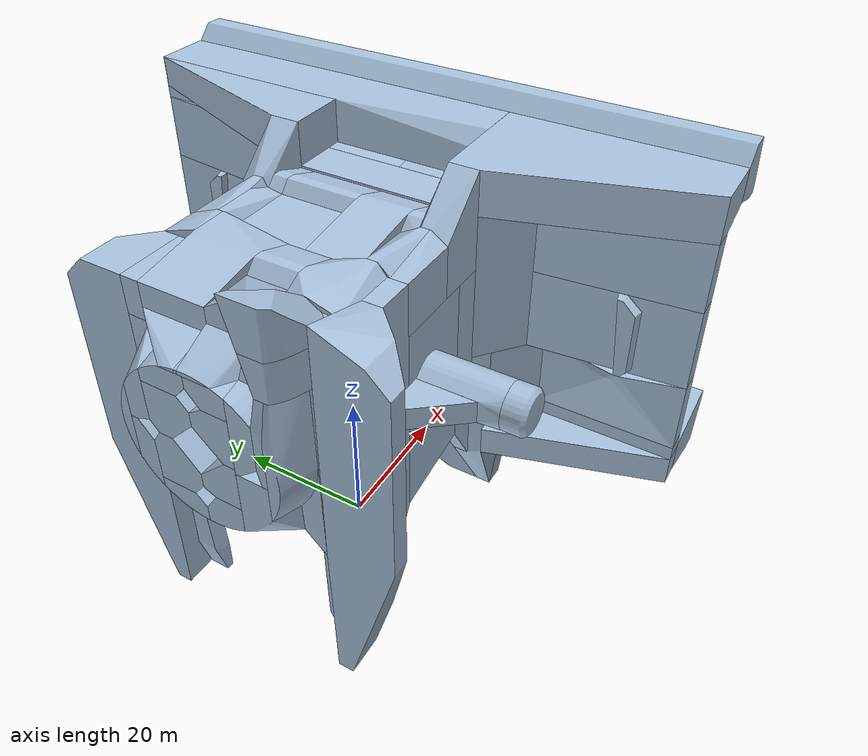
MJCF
<?xml version="1.0" encoding="UTF-8"?>
<mujoco model="gripper_base">
  <compiler angle="radian" meshdir="."/>
  <option gravity="0 0 -9.81"/>
  <asset>
    <mesh name="gripper_base_part_000" file="Gripper Base_parts/Gripper Base_000.obj" inertia="convex"/>
    <mesh name="gripper_base_part_001" file="Gripper Base_parts/Gripper Base_001.obj" inertia="convex"/>
    <mesh name="gripper_base_part_002" file="Gripper Base_parts/Gripper Base_002.obj" inertia="convex"/>
    <mesh name="gripper_base_part_003" file="Gripper Base_parts/Gripper Base_003.obj" inertia="convex"/>
    <mesh name="gripper_base_part_004" file="Gripper Base_parts/Gripper Base_004.obj" inertia="convex"/>
    <mesh name="gripper_base_part_005" file="Gripper Base_parts/Gripper Base_005.obj" inertia="convex"/>
    <mesh name="gripper_base_part_006" file="Gripper Base_parts/Gripper Base_006.obj" inertia="convex"/>
    <mesh name="gripper_base_part_007" file="Gripper Base_parts/Gripper Base_007.obj" inertia="convex"/>
    <mesh name="gripper_base_part_008" file="Gripper Base_parts/Gripper Base_008.obj" inertia="convex"/>
    <mesh name="gripper_base_part_009" file="Gripper Base_parts/Gripper Base_009.obj" inertia="convex"/>
    <mesh name="gripper_base_part_010" file="Gripper Base_parts/Gripper Base_010.obj" inertia="convex"/>
    <mesh name="gripper_base_part_011" file="Gripper Base_parts/Gripper Base_011.obj" inertia="convex"/>
    <mesh name="gripper_base_part_012" file="Gripper Base_parts/Gripper Base_012.obj" inertia="convex"/>
    <mesh name="gripper_base_part_013" file="Gripper Base_parts/Gripper Base_013.obj" inertia="convex"/>
    <mesh name="gripper_base_part_014" file="Gripper Base_parts/Gripper Base_014.obj" inertia="convex"/>
    <mesh name="gripper_base_part_015" file="Gripper Base_parts/Gripper Base_015.obj" inertia="convex"/>
    <mesh name="gripper_base_part_016" file="Gripper Base_parts/Gripper Base_016.obj" inertia="convex"/>
    <mesh name="gripper_base_part_017" file="Gripper Base_parts/Gripper Base_017.obj" inertia="convex"/>
    <mesh name="gripper_base_part_018" file="Gripper Base_parts/Gripper Base_018.obj" inertia="convex"/>
    <mesh name="gripper_base_part_019" file="Gripper Base_parts/Gripper Base_019.obj" inertia="convex"/>
    <mesh name="gripper_base_part_020" file="Gripper Base_parts/Gripper Base_020.obj" inertia="convex"/>
    <mesh name="gripper_base_part_021" file="Gripper Base_parts/Gripper Base_021.obj" inertia="convex"/>
    <mesh name="gripper_base_part_022" file="Gripper Base_parts/Gripper Base_022.obj" inertia="convex"/>
    <mesh name="gripper_base_part_023" file="Gripper Base_parts/Gripper Base_023.obj" inertia="convex"/>
    <mesh name="gripper_base_part_024" file="Gripper Base_parts/Gripper Base_024.obj" inertia="convex"/>
    <mesh name="gripper_base_part_025" file="Gripper Base_parts/Gripper Base_025.obj" inertia="convex"/>
    <mesh name="gripper_base_part_026" file="Gripper Base_parts/Gripper Base_026.obj" inertia="convex"/>
    <mesh name="gripper_base_part_027" file="Gripper Base_parts/Gripper Base_027.obj" inertia="convex"/>
    <mesh name="gripper_base_part_028" file="Gripper Base_parts/Gripper Base_028.obj" inertia="convex"/>
    <mesh name="gripper_base_part_029" file="Gripper Base_parts/Gripper Base_029.obj" inertia="convex"/>
    <mesh name="gripper_base_part_030" file="Gripper Base_parts/Gripper Base_030.obj" inertia="convex"/>
    <mesh name="gripper_base_part_031" file="Gripper Base_parts/Gripper Base_031.obj" inertia="convex"/>
    <mesh name="gripper_base_part_032" file="Gripper Base_parts/Gripper Base_032.obj" inertia="convex"/>
    <mesh name="gripper_base_part_033" file="Gripper Base_parts/Gripper Base_033.obj" inertia="convex"/>
    <mesh name="gripper_base_part_034" file="Gripper Base_parts/Gripper Base_034.obj" inertia="convex"/>
    <mesh name="gripper_base_part_035" file="Gripper Base_parts/Gripper Base_035.obj" inertia="convex"/>
    <mesh name="gripper_base_part_036" file="Gripper Base_parts/Gripper Base_036.obj" inertia="convex"/>
    <mesh name="gripper_base_part_037" file="Gripper Base_parts/Gripper Base_037.obj" inertia="convex"/>
    <mesh name="gripper_base_part_038" file="Gripper Base_parts/Gripper Base_038.obj" inertia="convex"/>
    <mesh name="gripper_base_part_039" file="Gripper Base_parts/Gripper Base_039.obj" inertia="convex"/>
    <mesh name="gripper_base_part_040" file="Gripper Base_parts/Gripper Base_040.obj" inertia="convex"/>
    <mesh name="gripper_base_part_041" file="Gripper Base_parts/Gripper Base_041.obj" inertia="convex"/>
    <mesh name="gripper_base_part_042" file="Gripper Base_parts/Gripper Base_042.obj" inertia="convex"/>
    <mesh name="gripper_base_part_043" file="Gripper Base_parts/Gripper Base_043.obj" inertia="convex"/>
    <mesh name="gripper_base_part_044" file="Gripper Base_parts/Gripper Base_044.obj" inertia="convex"/>
    <mesh name="gripper_base_part_045" file="Gripper Base_parts/Gripper Base_045.obj" inertia="convex"/>
    <mesh name="gripper_base_part_046" file="Gripper Base_parts/Gripper Base_046.obj" inertia="convex"/>
    <mesh name="gripper_base_part_047" file="Gripper Base_parts/Gripper Base_047.obj" inertia="convex"/>
    <mesh name="gripper_base_part_048" file="Gripper Base_parts/Gripper Base_048.obj" inertia="convex"/>
    <mesh name="gripper_base_part_049" file="Gripper Base_parts/Gripper Base_049.obj" inertia="convex"/>
    <mesh name="gripper_base_part_050" file="Gripper Base_parts/Gripper Base_050.obj" inertia="convex"/>
    <mesh name="gripper_base_part_051" file="Gripper Base_parts/Gripper Base_051.obj" inertia="convex"/>
    <mesh name="gripper_base_part_052" file="Gripper Base_parts/Gripper Base_052.obj" inertia="convex"/>
    <mesh name="gripper_base_part_053" file="Gripper Base_parts/Gripper Base_053.obj" inertia="convex"/>
    <mesh name="gripper_base_part_054" file="Gripper Base_parts/Gripper Base_054.obj" inertia="convex"/>
    <mesh name="gripper_base_part_055" file="Gripper Base_parts/Gripper Base_055.obj" inertia="convex"/>
    <mesh name="gripper_base_part_056" file="Gripper Base_parts/Gripper Base_056.obj" inertia="convex"/>
    <mesh name="gripper_base_part_057" file="Gripper Base_parts/Gripper Base_057.obj" inertia="convex"/>
    <mesh name="gripper_base_part_058" file="Gripper Base_parts/Gripper Base_058.obj" inertia="convex"/>
    <mesh name="gripper_base_part_059" file="Gripper Base_parts/Gripper Base_059.obj" inertia="convex"/>
    <mesh name="gripper_base_part_060" file="Gripper Base_parts/Gripper Base_060.obj" inertia="convex"/>
    <mesh name="gripper_base_part_061" file="Gripper Base_parts/Gripper Base_061.obj" inertia="convex"/>
    <mesh name="gripper_base_part_062" file="Gripper Base_parts/Gripper Base_062.obj" inertia="convex"/>
    <mesh name="gripper_base_part_063" file="Gripper Base_parts/Gripper Base_063.obj" inertia="convex"/>
    <mesh name="gripper_base_part_064" file="Gripper Base_parts/Gripper Base_064.obj" inertia="convex"/>
    <mesh name="gripper_base_part_065" file="Gripper Base_parts/Gripper Base_065.obj" inertia="convex"/>
    <mesh name="gripper_base_part_066" file="Gripper Base_parts/Gripper Base_066.obj" inertia="convex"/>
    <mesh name="gripper_base_part_067" file="Gripper Base_parts/Gripper Base_067.obj" inertia="convex"/>
    <mesh name="gripper_base_part_068" file="Gripper Base_parts/Gripper Base_068.obj" inertia="convex"/>
    <mesh name="gripper_base_part_069" file="Gripper Base_parts/Gripper Base_069.obj" inertia="convex"/>
    <mesh name="gripper_base_part_070" file="Gripper Base_parts/Gripper Base_070.obj" inertia="convex"/>
    <mesh name="gripper_base_part_071" file="Gripper Base_parts/Gripper Base_071.obj" inertia="convex"/>
    <mesh name="gripper_base_part_072" file="Gripper Base_parts/Gripper Base_072.obj" inertia="convex"/>
    <mesh name="gripper_base_part_073" file="Gripper Base_parts/Gripper Base_073.obj" inertia="convex"/>
    <mesh name="gripper_base_part_074" file="Gripper Base_parts/Gripper Base_074.obj" inertia="convex"/>
    <mesh name="gripper_base_part_075" file="Gripper Base_parts/Gripper Base_075.obj" inertia="convex"/>
    <mesh name="gripper_base_part_076" file="Gripper Base_parts/Gripper Base_076.obj" inertia="convex"/>
    <mesh name="gripper_base_part_077" file="Gripper Base_parts/Gripper Base_077.obj" inertia="convex"/>
    <mesh name="gripper_base_part_078" file="Gripper Base_parts/Gripper Base_078.obj" inertia="convex"/>
    <mesh name="gripper_base_part_079" file="Gripper Base_parts/Gripper Base_079.obj" inertia="convex"/>
    <mesh name="gripper_base_part_080" file="Gripper Base_parts/Gripper Base_080.obj" inertia="convex"/>
    <mesh name="gripper_base_part_081" file="Gripper Base_parts/Gripper Base_081.obj" inertia="convex"/>
    <mesh name="gripper_base_part_082" file="Gripper Base_parts/Gripper Base_082.obj" inertia="convex"/>
    <mesh name="gripper_base_part_083" file="Gripper Base_parts/Gripper Base_083.obj" inertia="convex"/>
    <mesh name="gripper_base_part_084" file="Gripper Base_parts/Gripper Base_084.obj" inertia="convex"/>
    <mesh name="gripper_base_part_085" file="Gripper Base_parts/Gripper Base_085.obj" inertia="convex"/>
    <mesh name="gripper_base_part_086" file="Gripper Base_parts/Gripper Base_086.obj" inertia="convex"/>
    <mesh name="gripper_base_part_087" file="Gripper Base_parts/Gripper Base_087.obj" inertia="convex"/>
  </asset>
  <worldbody>
    <body name="gripper_base">
      <!-- Remove this freejoint when attaching the body to an existing model. -->
      <freejoint/>
      <geom name="gripper_base_part_000_geom" type="mesh" mesh="gripper_base_part_000" contype="1" conaffinity="1" rgba="0.65 0.75 0.85 1"/>
      <geom name="gripper_base_part_001_geom" type="mesh" mesh="gripper_base_part_001" contype="1" conaffinity="1" rgba="0.65 0.75 0.85 1"/>
      <geom name="gripper_base_part_002_geom" type="mesh" mesh="gripper_base_part_002" contype="1" conaffinity="1" rgba="0.65 0.75 0.85 1"/>
      <geom name="gripper_base_part_003_geom" type="mesh" mesh="gripper_base_part_003" contype="1" conaffinity="1" rgba="0.65 0.75 0.85 1"/>
      <geom name="gripper_base_part_004_geom" type="mesh" mesh="gripper_base_part_004" contype="1" conaffinity="1" rgba="0.65 0.75 0.85 1"/>
      <geom name="gripper_base_part_005_geom" type="mesh" mesh="gripper_base_part_005" contype="1" conaffinity="1" rgba="0.65 0.75 0.85 1"/>
      <geom name="gripper_base_part_006_geom" type="mesh" mesh="gripper_base_part_006" contype="1" conaffinity="1" rgba="0.65 0.75 0.85 1"/>
      <geom name="gripper_base_part_007_geom" type="mesh" mesh="gripper_base_part_007" contype="1" conaffinity="1" rgba="0.65 0.75 0.85 1"/>
      <geom name="gripper_base_part_008_geom" type="mesh" mesh="gripper_base_part_008" contype="1" conaffinity="1" rgba="0.65 0.75 0.85 1"/>
      <geom name="gripper_base_part_009_geom" type="mesh" mesh="gripper_base_part_009" contype="1" conaffinity="1" rgba="0.65 0.75 0.85 1"/>
      <geom name="gripper_base_part_010_geom" type="mesh" mesh="gripper_base_part_010" contype="1" conaffinity="1" rgba="0.65 0.75 0.85 1"/>
      <geom name="gripper_base_part_011_geom" type="mesh" mesh="gripper_base_part_011" contype="1" conaffinity="1" rgba="0.65 0.75 0.85 1"/>
      <geom name="gripper_base_part_012_geom" type="mesh" mesh="gripper_base_part_012" contype="1" conaffinity="1" rgba="0.65 0.75 0.85 1"/>
      <geom name="gripper_base_part_013_geom" type="mesh" mesh="gripper_base_part_013" contype="1" conaffinity="1" rgba="0.65 0.75 0.85 1"/>
      <geom name="gripper_base_part_014_geom" type="mesh" mesh="gripper_base_part_014" contype="1" conaffinity="1" rgba="0.65 0.75 0.85 1"/>
      <geom name="gripper_base_part_015_geom" type="mesh" mesh="gripper_base_part_015" contype="1" conaffinity="1" rgba="0.65 0.75 0.85 1"/>
      <geom name="gripper_base_part_016_geom" type="mesh" mesh="gripper_base_part_016" contype="1" conaffinity="1" rgba="0.65 0.75 0.85 1"/>
      <geom name="gripper_base_part_017_geom" type="mesh" mesh="gripper_base_part_017" contype="1" conaffinity="1" rgba="0.65 0.75 0.85 1"/>
      <geom name="gripper_base_part_018_geom" type="mesh" mesh="gripper_base_part_018" contype="1" conaffinity="1" rgba="0.65 0.75 0.85 1"/>
      <geom name="gripper_base_part_019_geom" type="mesh" mesh="gripper_base_part_019" contype="1" conaffinity="1" rgba="0.65 0.75 0.85 1"/>
      <geom name="gripper_base_part_020_geom" type="mesh" mesh="gripper_base_part_020" contype="1" conaffinity="1" rgba="0.65 0.75 0.85 1"/>
      <geom name="gripper_base_part_021_geom" type="mesh" mesh="gripper_base_part_021" contype="1" conaffinity="1" rgba="0.65 0.75 0.85 1"/>
      <geom name="gripper_base_part_022_geom" type="mesh" mesh="gripper_base_part_022" contype="1" conaffinity="1" rgba="0.65 0.75 0.85 1"/>
      <geom name="gripper_base_part_023_geom" type="mesh" mesh="gripper_base_part_023" contype="1" conaffinity="1" rgba="0.65 0.75 0.85 1"/>
      <geom name="gripper_base_part_024_geom" type="mesh" mesh="gripper_base_part_024" contype="1" conaffinity="1" rgba="0.65 0.75 0.85 1"/>
      <geom name="gripper_base_part_025_geom" type="mesh" mesh="gripper_base_part_025" contype="1" conaffinity="1" rgba="0.65 0.75 0.85 1"/>
      <geom name="gripper_base_part_026_geom" type="mesh" mesh="gripper_base_part_026" contype="1" conaffinity="1" rgba="0.65 0.75 0.85 1"/>
      <geom name="gripper_base_part_027_geom" type="mesh" mesh="gripper_base_part_027" contype="1" conaffinity="1" rgba="0.65 0.75 0.85 1"/>
      <geom name="gripper_base_part_028_geom" type="mesh" mesh="gripper_base_part_028" contype="1" conaffinity="1" rgba="0.65 0.75 0.85 1"/>
      <geom name="gripper_base_part_029_geom" type="mesh" mesh="gripper_base_part_029" contype="1" conaffinity="1" rgba="0.65 0.75 0.85 1"/>
      <geom name="gripper_base_part_030_geom" type="mesh" mesh="gripper_base_part_030" contype="1" conaffinity="1" rgba="0.65 0.75 0.85 1"/>
      <geom name="gripper_base_part_031_geom" type="mesh" mesh="gripper_base_part_031" contype="1" conaffinity="1" rgba="0.65 0.75 0.85 1"/>
      <geom name="gripper_base_part_032_geom" type="mesh" mesh="gripper_base_part_032" contype="1" conaffinity="1" rgba="0.65 0.75 0.85 1"/>
      <geom name="gripper_base_part_033_geom" type="mesh" mesh="gripper_base_part_033" contype="1" conaffinity="1" rgba="0.65 0.75 0.85 1"/>
      <geom name="gripper_base_part_034_geom" type="mesh" mesh="gripper_base_part_034" contype="1" conaffinity="1" rgba="0.65 0.75 0.85 1"/>
      <geom name="gripper_base_part_035_geom" type="mesh" mesh="gripper_base_part_035" contype="1" conaffinity="1" rgba="0.65 0.75 0.85 1"/>
      <geom name="gripper_base_part_036_geom" type="mesh" mesh="gripper_base_part_036" contype="1" conaffinity="1" rgba="0.65 0.75 0.85 1"/>
      <geom name="gripper_base_part_037_geom" type="mesh" mesh="gripper_base_part_037" contype="1" conaffinity="1" rgba="0.65 0.75 0.85 1"/>
      <geom name="gripper_base_part_038_geom" type="mesh" mesh="gripper_base_part_038" contype="1" conaffinity="1" rgba="0.65 0.75 0.85 1"/>
      <geom name="gripper_base_part_039_geom" type="mesh" mesh="gripper_base_part_039" contype="1" conaffinity="1" rgba="0.65 0.75 0.85 1"/>
      <geom name="gripper_base_part_040_geom" type="mesh" mesh="gripper_base_part_040" contype="1" conaffinity="1" rgba="0.65 0.75 0.85 1"/>
      <geom name="gripper_base_part_041_geom" type="mesh" mesh="gripper_base_part_041" contype="1" conaffinity="1" rgba="0.65 0.75 0.85 1"/>
      <geom name="gripper_base_part_042_geom" type="mesh" mesh="gripper_base_part_042" contype="1" conaffinity="1" rgba="0.65 0.75 0.85 1"/>
      <geom name="gripper_base_part_043_geom" type="mesh" mesh="gripper_base_part_043" contype="1" conaffinity="1" rgba="0.65 0.75 0.85 1"/>
      <geom name="gripper_base_part_044_geom" type="mesh" mesh="gripper_base_part_044" contype="1" conaffinity="1" rgba="0.65 0.75 0.85 1"/>
      <geom name="gripper_base_part_045_geom" type="mesh" mesh="gripper_base_part_045" contype="1" conaffinity="1" rgba="0.65 0.75 0.85 1"/>
      <geom name="gripper_base_part_046_geom" type="mesh" mesh="gripper_base_part_046" contype="1" conaffinity="1" rgba="0.65 0.75 0.85 1"/>
      <geom name="gripper_base_part_047_geom" type="mesh" mesh="gripper_base_part_047" contype="1" conaffinity="1" rgba="0.65 0.75 0.85 1"/>
      <geom name="gripper_base_part_048_geom" type="mesh" mesh="gripper_base_part_048" contype="1" conaffinity="1" rgba="0.65 0.75 0.85 1"/>
      <geom name="gripper_base_part_049_geom" type="mesh" mesh="gripper_base_part_049" contype="1" conaffinity="1" rgba="0.65 0.75 0.85 1"/>
      <geom name="gripper_base_part_050_geom" type="mesh" mesh="gripper_base_part_050" contype="1" conaffinity="1" rgba="0.65 0.75 0.85 1"/>
      <geom name="gripper_base_part_051_geom" type="mesh" mesh="gripper_base_part_051" contype="1" conaffinity="1" rgba="0.65 0.75 0.85 1"/>
      <geom name="gripper_base_part_052_geom" type="mesh" mesh="gripper_base_part_052" contype="1" conaffinity="1" rgba="0.65 0.75 0.85 1"/>
      <geom name="gripper_base_part_053_geom" type="mesh" mesh="gripper_base_part_053" contype="1" conaffinity="1" rgba="0.65 0.75 0.85 1"/>
      <geom name="gripper_base_part_054_geom" type="mesh" mesh="gripper_base_part_054" contype="1" conaffinity="1" rgba="0.65 0.75 0.85 1"/>
      <geom name="gripper_base_part_055_geom" type="mesh" mesh="gripper_base_part_055" contype="1" conaffinity="1" rgba="0.65 0.75 0.85 1"/>
      <geom name="gripper_base_part_056_geom" type="mesh" mesh="gripper_base_part_056" contype="1" conaffinity="1" rgba="0.65 0.75 0.85 1"/>
      <geom name="gripper_base_part_057_geom" type="mesh" mesh="gripper_base_part_057" contype="1" conaffinity="1" rgba="0.65 0.75 0.85 1"/>
      <geom name="gripper_base_part_058_geom" type="mesh" mesh="gripper_base_part_058" contype="1" conaffinity="1" rgba="0.65 0.75 0.85 1"/>
      <geom name="gripper_base_part_059_geom" type="mesh" mesh="gripper_base_part_059" contype="1" conaffinity="1" rgba="0.65 0.75 0.85 1"/>
      <geom name="gripper_base_part_060_geom" type="mesh" mesh="gripper_base_part_060" contype="1" conaffinity="1" rgba="0.65 0.75 0.85 1"/>
      <geom name="gripper_base_part_061_geom" type="mesh" mesh="gripper_base_part_061" contype="1" conaffinity="1" rgba="0.65 0.75 0.85 1"/>
      <geom name="gripper_base_part_062_geom" type="mesh" mesh="gripper_base_part_062" contype="1" conaffinity="1" rgba="0.65 0.75 0.85 1"/>
      <geom name="gripper_base_part_063_geom" type="mesh" mesh="gripper_base_part_063" contype="1" conaffinity="1" rgba="0.65 0.75 0.85 1"/>
      <geom name="gripper_base_part_064_geom" type="mesh" mesh="gripper_base_part_064" contype="1" conaffinity="1" rgba="0.65 0.75 0.85 1"/>
      <geom name="gripper_base_part_065_geom" type="mesh" mesh="gripper_base_part_065" contype="1" conaffinity="1" rgba="0.65 0.75 0.85 1"/>
      <geom name="gripper_base_part_066_geom" type="mesh" mesh="gripper_base_part_066" contype="1" conaffinity="1" rgba="0.65 0.75 0.85 1"/>
      <geom name="gripper_base_part_067_geom" type="mesh" mesh="gripper_base_part_067" contype="1" conaffinity="1" rgba="0.65 0.75 0.85 1"/>
      <geom name="gripper_base_part_068_geom" type="mesh" mesh="gripper_base_part_068" contype="1" conaffinity="1" rgba="0.65 0.75 0.85 1"/>
      <geom name="gripper_base_part_069_geom" type="mesh" mesh="gripper_base_part_069" contype="1" conaffinity="1" rgba="0.65 0.75 0.85 1"/>
      <geom name="gripper_base_part_070_geom" type="mesh" mesh="gripper_base_part_070" contype="1" conaffinity="1" rgba="0.65 0.75 0.85 1"/>
      <geom name="gripper_base_part_071_geom" type="mesh" mesh="gripper_base_part_071" contype="1" conaffinity="1" rgba="0.65 0.75 0.85 1"/>
      <geom name="gripper_base_part_072_geom" type="mesh" mesh="gripper_base_part_072" contype="1" conaffinity="1" rgba="0.65 0.75 0.85 1"/>
      <geom name="gripper_base_part_073_geom" type="mesh" mesh="gripper_base_part_073" contype="1" conaffinity="1" rgba="0.65 0.75 0.85 1"/>
      <geom name="gripper_base_part_074_geom" type="mesh" mesh="gripper_base_part_074" contype="1" conaffinity="1" rgba="0.65 0.75 0.85 1"/>
      <geom name="gripper_base_part_075_geom" type="mesh" mesh="gripper_base_part_075" contype="1" conaffinity="1" rgba="0.65 0.75 0.85 1"/>
      <geom name="gripper_base_part_076_geom" type="mesh" mesh="gripper_base_part_076" contype="1" conaffinity="1" rgba="0.65 0.75 0.85 1"/>
      <geom name="gripper_base_part_077_geom" type="mesh" mesh="gripper_base_part_077" contype="1" conaffinity="1" rgba="0.65 0.75 0.85 1"/>
      <geom name="gripper_base_part_078_geom" type="mesh" mesh="gripper_base_part_078" contype="1" conaffinity="1" rgba="0.65 0.75 0.85 1"/>
      <geom name="gripper_base_part_079_geom" type="mesh" mesh="gripper_base_part_079" contype="1" conaffinity="1" rgba="0.65 0.75 0.85 1"/>
      <geom name="gripper_base_part_080_geom" type="mesh" mesh="gripper_base_part_080" contype="1" conaffinity="1" rgba="0.65 0.75 0.85 1"/>
      <geom name="gripper_base_part_081_geom" type="mesh" mesh="gripper_base_part_081" contype="1" conaffinity="1" rgba="0.65 0.75 0.85 1"/>
      <geom name="gripper_base_part_082_geom" type="mesh" mesh="gripper_base_part_082" contype="1" conaffinity="1" rgba="0.65 0.75 0.85 1"/>
      <geom name="gripper_base_part_083_geom" type="mesh" mesh="gripper_base_part_083" contype="1" conaffinity="1" rgba="0.65 0.75 0.85 1"/>
      <geom name="gripper_base_part_084_geom" type="mesh" mesh="gripper_base_part_084" contype="1" conaffinity="1" rgba="0.65 0.75 0.85 1"/>
      <geom name="gripper_base_part_085_geom" type="mesh" mesh="gripper_base_part_085" contype="1" conaffinity="1" rgba="0.65 0.75 0.85 1"/>
      <geom name="gripper_base_part_086_geom" type="mesh" mesh="gripper_base_part_086" contype="1" conaffinity="1" rgba="0.65 0.75 0.85 1"/>
      <geom name="gripper_base_part_087_geom" type="mesh" mesh="gripper_base_part_087" contype="1" conaffinity="1" rgba="0.65 0.75 0.85 1"/>
    </body>
  </worldbody>
</mujoco>
